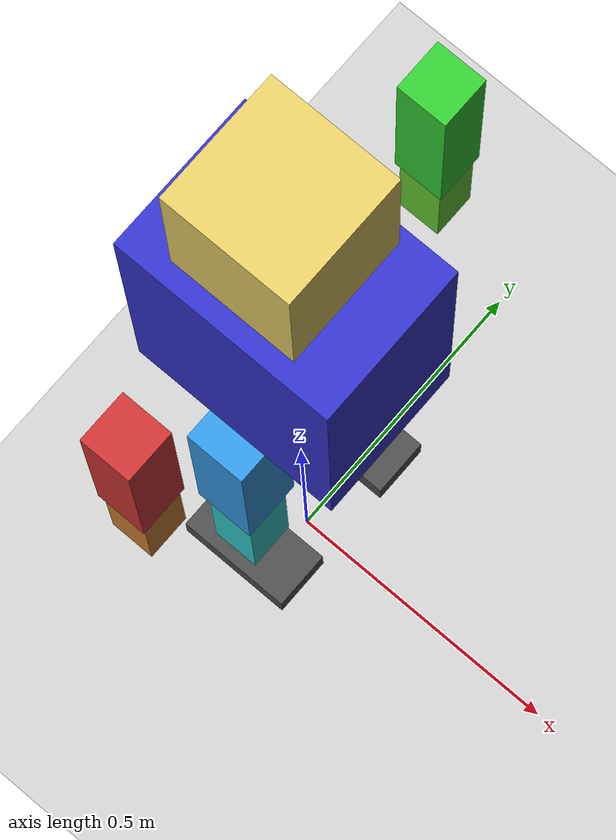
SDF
<sdf version="1.7">
  <world name="humanoid_walk_demo_world">

    <plugin filename="gz-sim-physics-system"
            name="gz::sim::systems::Physics"/>
    <plugin filename="gz-sim-scene-broadcaster-system"
            name="gz::sim::systems::SceneBroadcaster"/>

    <include>
      <uri>model://ground_plane</uri>
    </include>

    <model name="humanoid_walk_demo">
      <pose>0 0 1 0 0 0</pose>
      <static>false</static>

      <!-- ========== ROOT / TORSO / HEAD ========== -->
      <link name="pelvis">
        <gravity>0</gravity>
        <inertial><mass>4</mass></inertial>
        <visual name="pelvis_vis">
          <geometry><box><size>0.3 0.2 0.2</size></box></geometry>
          <material><ambient>0.3 0.3 0.9 1</ambient></material>
        </visual>
      </link>

      <link name="torso">
        <pose>0 0 0.25 0 0 0</pose>
        <gravity>0</gravity>
        <inertial><mass>6</mass></inertial>
        <visual name="torso_vis">
          <geometry><box><size>0.35 0.25 0.5</size></box></geometry>
          <material><ambient>0.2 0.2 0.8 1</ambient></material>
        </visual>
      </link>

      <link name="head">
        <pose>0 0 0.65 0 0 0</pose>
        <gravity>0</gravity>
        <inertial><mass>2</mass></inertial>
        <visual name="head_vis">
          <geometry><box><size>0.2 0.2 0.25</size></box></geometry>
          <material><ambient>0.9 0.8 0.4 1</ambient></material>
        </visual>
      </link>

      <joint name="spine_pitch" type="revolute">
        <parent>pelvis</parent><child>torso</child>
        <pose>0 0 0.1 0 0 0</pose>
        <axis>
          <xyz>0 1 0</xyz>
          <limit>
            <lower>-0.3</lower>
            <upper>0.3</upper>
            <effort>1000</effort>
          </limit>
          <dynamics><damping>0.5</damping></dynamics>
        </axis>
      </joint>

      <joint name="neck_yaw" type="revolute">
        <parent>torso</parent><child>head</child>
        <pose>0 0 0.5 0 0 0</pose>
        <axis>
          <xyz>0 0 1</xyz>
          <limit>
            <lower>-0.4</lower>
            <upper>0.4</upper>
            <effort>500</effort>
          </limit>
          <dynamics><damping>0.3</damping></dynamics>
        </axis>
      </joint>

      <!-- ========== ARMS ========== -->
      <!-- Right arm -->
      <link name="r_upper_arm">
        <pose>0 -0.3 0.35 0 0 0</pose>
        <gravity>0</gravity>
        <inertial><mass>1.5</mass></inertial>
        <visual name="r_upper_arm_vis">
          <geometry><box><size>0.08 0.08 0.3</size></box></geometry>
          <material><ambient>0.8 0.2 0.2 1</ambient></material>
        </visual>
      </link>

      <link name="r_lower_arm">
        <pose>0 -0.3 0.15 0 0 0</pose>
        <gravity>0</gravity>
        <inertial><mass>1.0</mass></inertial>
        <visual name="r_lower_arm_vis">
          <geometry><box><size>0.07 0.07 0.25</size></box></geometry>
          <material><ambient>0.8 0.5 0.2 1</ambient></material>
        </visual>
      </link>

      <joint name="r_shoulder" type="revolute">
        <parent>torso</parent><child>r_upper_arm</child>
        <pose>0 -0.2 0.4 0 0 0</pose>
        <axis>
          <xyz>0 1 0</xyz>
          <limit>
            <lower>-0.8</lower>
            <upper>0.8</upper>
            <effort>800</effort>
          </limit>
          <dynamics><damping>0.4</damping></dynamics>
        </axis>
      </joint>

      <joint name="r_elbow" type="revolute">
        <parent>r_upper_arm</parent><child>r_lower_arm</child>
        <pose>0 -0.3 0.2 0 0 0</pose>
        <axis>
          <xyz>0 1 0</xyz>
          <limit>
            <lower>0</lower>
            <upper>1.8</upper>
            <effort>600</effort>
          </limit>
          <dynamics><damping>0.3</damping></dynamics>
        </axis>
      </joint>

      <!-- Left arm -->
      <link name="l_upper_arm">
        <pose>0 0.3 0.35 0 0 0</pose>
        <gravity>0</gravity>
        <inertial><mass>1.5</mass></inertial>
        <visual name="l_upper_arm_vis">
          <geometry><box><size>0.08 0.08 0.3</size></box></geometry>
          <material><ambient>0.2 0.8 0.2 1</ambient></material>
        </visual>
      </link>

      <link name="l_lower_arm">
        <pose>0 0.3 0.15 0 0 0</pose>
        <gravity>0</gravity>
        <inertial><mass>1.0</mass></inertial>
        <visual name="l_lower_arm_vis">
          <geometry><box><size>0.07 0.07 0.25</size></box></geometry>
          <material><ambient>0.4 0.8 0.2 1</ambient></material>
        </visual>
      </link>

      <joint name="l_shoulder" type="revolute">
        <parent>torso</parent><child>l_upper_arm</child>
        <pose>0 0.2 0.4 0 0 0</pose>
        <axis>
          <xyz>0 1 0</xyz>
          <limit>
            <lower>-0.8</lower>
            <upper>0.8</upper>
            <effort>800</effort>
          </limit>
          <dynamics><damping>0.4</damping></dynamics>
        </axis>
      </joint>

      <joint name="l_elbow" type="revolute">
        <parent>l_upper_arm</parent><child>l_lower_arm</child>
        <pose>0 0.3 0.2 0 0 0</pose>
        <axis>
          <xyz>0 1 0</xyz>
          <limit>
            <lower>0</lower>
            <upper>1.8</upper>
            <effort>600</effort>
          </limit>
          <dynamics><damping>0.3</damping></dynamics>
        </axis>
      </joint>

      <!-- ========== LEGS ========== -->
      <!-- Right leg -->
      <link name="r_upper_leg">
        <pose>0 -0.12 -0.2 0 0 0</pose>
        <gravity>0</gravity>
        <inertial><mass>3</mass></inertial>
        <visual name="r_upper_leg_vis">
          <geometry><box><size>0.10 0.10 0.35</size></box></geometry>
          <material><ambient>0.2 0.6 0.9 1</ambient></material>
        </visual>
      </link>

      <link name="r_lower_leg">
        <pose>0 -0.12 -0.5 0 0 0</pose>
        <gravity>0</gravity>
        <inertial><mass>2</mass></inertial>
        <visual name="r_lower_leg_vis">
          <geometry><box><size>0.08 0.08 0.3</size></box></geometry>
          <material><ambient>0.2 0.8 0.8 1</ambient></material>
        </visual>
      </link>

      <link name="r_foot">
        <pose>0 -0.12 -0.75 0 0 0</pose>
        <gravity>0</gravity>
        <inertial><mass>1</mass></inertial>
        <visual name="r_foot_vis">
          <geometry><box><size>0.20 0.10 0.05</size></box></geometry>
          <material><ambient>0.3 0.3 0.3 1</ambient></material>
        </visual>
      </link>

      <joint name="r_hip" type="revolute">
        <parent>pelvis</parent><child>r_upper_leg</child>
        <pose>0 -0.12 -0.05 0 0 0</pose>
        <axis>
          <xyz>0 1 0</xyz>
          <limit>
            <lower>-0.6</lower>
            <upper>0.6</upper>
            <effort>1200</effort>
          </limit>
          <dynamics><damping>0.5</damping></dynamics>
        </axis>
      </joint>

      <joint name="r_knee" type="revolute">
        <parent>r_upper_leg</parent><child>r_lower_leg</child>
        <pose>0 -0.12 -0.4 0 0 0</pose>
        <axis>
          <xyz>0 1 0</xyz>
          <limit>
            <lower>0</lower>
            <upper>1.8</upper>
            <effort>1200</effort>
          </limit>
          <dynamics><damping>0.4</damping></dynamics>
        </axis>
      </joint>

      <joint name="r_ankle" type="revolute">
        <parent>r_lower_leg</parent><child>r_foot</child>
        <pose>0 -0.12 -0.7 0 0 0</pose>
        <axis>
          <xyz>0 1 0</xyz>
          <limit>
            <lower>-0.4</lower>
            <upper>0.4</upper>
            <effort>800</effort>
          </limit>
          <dynamics><damping>0.3</damping></dynamics>
        </axis>
      </joint>

      <!-- Left leg -->
      <link name="l_upper_leg">
        <pose>0 0.12 -0.2 0 0 0</pose>
        <gravity>0</gravity>
        <inertial><mass>3</mass></inertial>
        <visual name="l_upper_leg_vis">
          <geometry><box><size>0.10 0.10 0.35</size></box></geometry>
          <material><ambient>0.2 0.9 0.6 1</ambient></material>
        </visual>
      </link>

      <link name="l_lower_leg">
        <pose>0 0.12 -0.5 0 0 0</pose>
        <gravity>0</gravity>
        <inertial><mass>2</mass></inertial>
        <visual name="l_lower_leg_vis">
          <geometry><box><size>0.08 0.08 0.3</size></box></geometry>
          <material><ambient>0.2 0.8 0.8 1</ambient></material>
        </visual>
      </link>

      <link name="l_foot">
        <pose>0 0.12 -0.75 0 0 0</pose>
        <gravity>0</gravity>
        <inertial><mass>1</mass></inertial>
        <visual name="l_foot_vis">
          <geometry><box><size>0.20 0.10 0.05</size></box></geometry>
          <material><ambient>0.3 0.3 0.3 1</ambient></material>
        </visual>
      </link>

      <joint name="l_hip" type="revolute">
        <parent>pelvis</parent><child>l_upper_leg</child>
        <pose>0 0.12 -0.05 0 0 0</pose>
        <axis>
          <xyz>0 1 0</xyz>
          <limit>
            <lower>-0.6</lower>
            <upper>0.6</upper>
            <effort>1200</effort>
          </limit>
          <dynamics><damping>0.5</damping></dynamics>
        </axis>
      </joint>

      <joint name="l_knee" type="revolute">
        <parent>l_upper_leg</parent><child>l_lower_leg</child>
        <pose>0 0.12 -0.4 0 0 0</pose>
        <axis>
          <xyz>0 1 0</xyz>
          <limit>
            <lower>0</lower>
            <upper>1.8</upper>
            <effort>1200</effort>
          </limit>
          <dynamics><damping>0.4</damping></dynamics>
        </axis>
      </joint>

      <joint name="l_ankle" type="revolute">
        <parent>l_lower_leg</parent><child>l_foot</child>
        <pose>0 0.12 -0.7 0 0 0</pose>
        <axis>
          <xyz>0 1 0</xyz>
          <limit>
            <lower>-0.4</lower>
            <upper>0.4</upper>
            <effort>800</effort>
          </limit>
          <dynamics><damping>0.3</damping></dynamics>
        </axis>
      </joint>

      <!-- ===== CONTROLLERS (reduced velocities) ===== -->
      <!-- legs -->
      <plugin filename="gz-sim-joint-controller-system"
              name="gz::sim::systems::JointController">
        <joint_name>r_hip</joint_name>
        <initial_velocity>0.15</initial_velocity>
      </plugin>
      <plugin filename="gz-sim-joint-controller-system"
              name="gz::sim::systems::JointController">
        <joint_name>l_hip</joint_name>
        <initial_velocity>-0.15</initial_velocity>
      </plugin>
      <plugin filename="gz-sim-joint-controller-system"
              name="gz::sim::systems::JointController">
        <joint_name>r_knee</joint_name>
        <initial_velocity>0.20</initial_velocity>
      </plugin>
      <plugin filename="gz-sim-joint-controller-system"
              name="gz::sim::systems::JointController">
        <joint_name>l_knee</joint_name>
        <initial_velocity>-0.20</initial_velocity>
      </plugin>

      <!-- arms -->
      <plugin filename="gz-sim-joint-controller-system"
              name="gz::sim::systems::JointController">
        <joint_name>r_shoulder</joint_name>
        <initial_velocity>-0.12</initial_velocity>
      </plugin>
      <plugin filename="gz-sim-joint-controller-system"
              name="gz::sim::systems::JointController">
        <joint_name>l_shoulder</joint_name>
        <initial_velocity>0.12</initial_velocity>
      </plugin>

      <!-- torso & head -->
      <plugin filename="gz-sim-joint-controller-system"
              name="gz::sim::systems::JointController">
        <joint_name>spine_pitch</joint_name>
        <initial_velocity>0.05</initial_velocity>
      </plugin>
      <plugin filename="gz-sim-joint-controller-system"
              name="gz::sim::systems::JointController">
        <joint_name>neck_yaw</joint_name>
        <initial_velocity>0.04</initial_velocity>
      </plugin>

    </model>

  </world>
</sdf>
